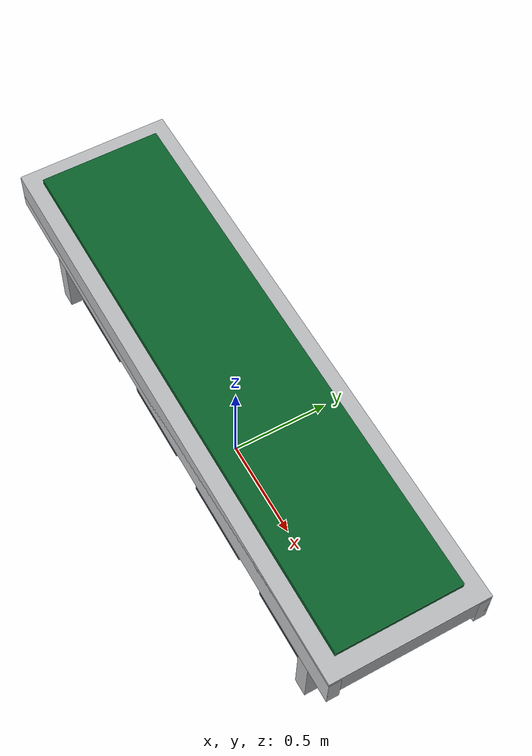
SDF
<?xml version="1.0"?>
<sdf version="1.10">
  <model name="l_workcell_conveyor">
    <static>true</static>
    <link name="conveyor">
      <collision name="belt_collision"><pose>0 0 0.70 0 0 0</pose><geometry><box><size>2.80 0.72 0.08</size></box></geometry></collision>
      <visual name="belt_visual"><pose>0 0 0.755 0 0 0</pose><geometry><box><size>2.68 0.60 0.03</size></box></geometry><material><ambient>0.02 0.18 0.08 1</ambient><diffuse>0.03 0.38 0.16 1</diffuse><specular>0.08 0.08 0.08 1</specular></material></visual>
      <visual name="frame_visual"><pose>0 0 0.67 0 0 0</pose><geometry><box><size>2.86 0.76 0.14</size></box></geometry><material><ambient>0.42 0.43 0.44 1</ambient><diffuse>0.72 0.73 0.74 1</diffuse><specular>0.35 0.35 0.35 1</specular></material></visual>

      <collision name="front_beam_collision"><pose>0 -0.35 0.63 0 0 0</pose><geometry><box><size>2.86 0.06 0.18</size></box></geometry></collision>
      <visual name="front_beam_visual"><pose>0 -0.35 0.63 0 0 0</pose><geometry><box><size>2.86 0.06 0.18</size></box></geometry><material><ambient>0.48 0.49 0.50 1</ambient><diffuse>0.76 0.77 0.78 1</diffuse></material></visual>
      <collision name="rear_beam_collision"><pose>0 0.35 0.63 0 0 0</pose><geometry><box><size>2.86 0.06 0.18</size></box></geometry></collision>
      <visual name="rear_beam_visual"><pose>0 0.35 0.63 0 0 0</pose><geometry><box><size>2.86 0.06 0.18</size></box></geometry><material><ambient>0.48 0.49 0.50 1</ambient><diffuse>0.76 0.77 0.78 1</diffuse></material></visual>

      <collision name="leg_1_collision"><pose>-1.18 -0.29 0.30 0 0 0</pose><geometry><box><size>0.08 0.08 0.60</size></box></geometry></collision>
      <visual name="leg_1_visual"><pose>-1.18 -0.29 0.30 0 0 0</pose><geometry><box><size>0.08 0.08 0.60</size></box></geometry><material><ambient>0.42 0.43 0.44 1</ambient><diffuse>0.72 0.73 0.74 1</diffuse></material></visual>
      <collision name="leg_2_collision"><pose>-1.18 0.29 0.30 0 0 0</pose><geometry><box><size>0.08 0.08 0.60</size></box></geometry></collision>
      <visual name="leg_2_visual"><pose>-1.18 0.29 0.30 0 0 0</pose><geometry><box><size>0.08 0.08 0.60</size></box></geometry><material><ambient>0.42 0.43 0.44 1</ambient><diffuse>0.72 0.73 0.74 1</diffuse></material></visual>
      <collision name="leg_3_collision"><pose>1.18 -0.29 0.30 0 0 0</pose><geometry><box><size>0.08 0.08 0.60</size></box></geometry></collision>
      <visual name="leg_3_visual"><pose>1.18 -0.29 0.30 0 0 0</pose><geometry><box><size>0.08 0.08 0.60</size></box></geometry><material><ambient>0.42 0.43 0.44 1</ambient><diffuse>0.72 0.73 0.74 1</diffuse></material></visual>
      <collision name="leg_4_collision"><pose>1.18 0.29 0.30 0 0 0</pose><geometry><box><size>0.08 0.08 0.60</size></box></geometry></collision>
      <visual name="leg_4_visual"><pose>1.18 0.29 0.30 0 0 0</pose><geometry><box><size>0.08 0.08 0.60</size></box></geometry><material><ambient>0.42 0.43 0.44 1</ambient><diffuse>0.72 0.73 0.74 1</diffuse></material></visual>

      <collision name="crate_1_collision"><pose>-0.92 0 0.25 0 0 0</pose><geometry><box><size>0.42 0.54 0.50</size></box></geometry></collision>
      <visual name="crate_1_visual"><pose>-0.92 0 0.25 0 0 0</pose><geometry><box><size>0.42 0.54 0.50</size></box></geometry><material><ambient>0.04 0.05 0.06 1</ambient><diffuse>0.10 0.12 0.14 1</diffuse></material></visual>
      <collision name="crate_2_collision"><pose>-0.31 0 0.25 0 0 0</pose><geometry><box><size>0.42 0.54 0.50</size></box></geometry></collision>
      <visual name="crate_2_visual"><pose>-0.31 0 0.25 0 0 0</pose><geometry><box><size>0.42 0.54 0.50</size></box></geometry><material><ambient>0.04 0.05 0.06 1</ambient><diffuse>0.10 0.12 0.14 1</diffuse></material></visual>
      <collision name="crate_3_collision"><pose>0.31 0 0.25 0 0 0</pose><geometry><box><size>0.42 0.54 0.50</size></box></geometry></collision>
      <visual name="crate_3_visual"><pose>0.31 0 0.25 0 0 0</pose><geometry><box><size>0.42 0.54 0.50</size></box></geometry><material><ambient>0.04 0.05 0.06 1</ambient><diffuse>0.10 0.12 0.14 1</diffuse></material></visual>
      <collision name="crate_4_collision"><pose>0.92 0 0.25 0 0 0</pose><geometry><box><size>0.42 0.54 0.50</size></box></geometry></collision>
      <visual name="crate_4_visual"><pose>0.92 0 0.25 0 0 0</pose><geometry><box><size>0.42 0.54 0.50</size></box></geometry><material><ambient>0.04 0.05 0.06 1</ambient><diffuse>0.10 0.12 0.14 1</diffuse></material></visual>
    </link>
  </model>
</sdf>
